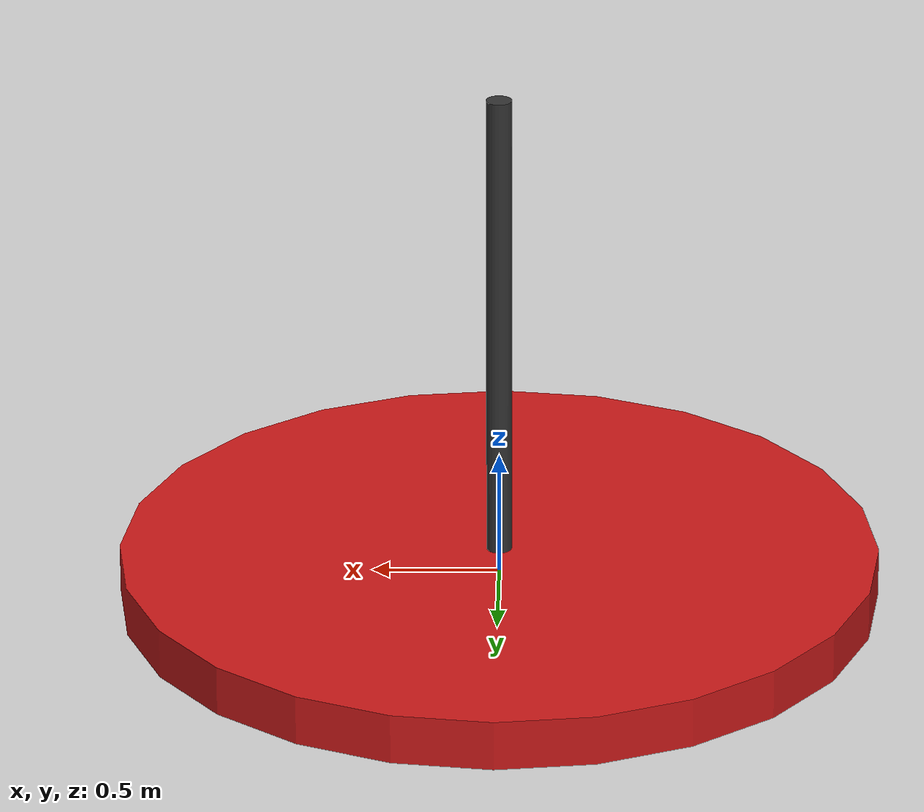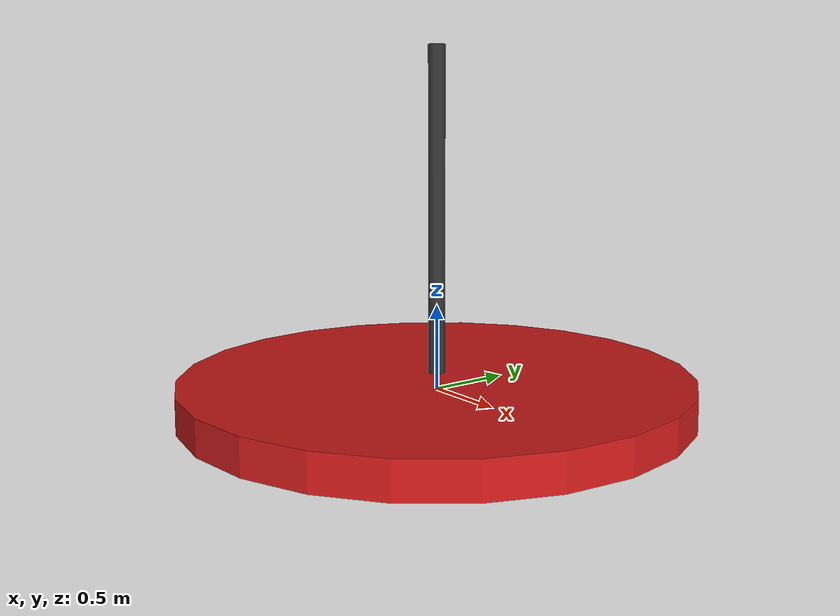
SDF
<?xml version="1.0" ?>
<sdf version="1.8">
  <model name="ground_station">
    <static>true</static>
    <link name="link">
      <collision name="collision">
        <geometry>
          <cylinder>
            <radius>1.5</radius>
            <length>0.2</length>
          </cylinder>
        </geometry>
      </collision>
      <visual name="visual">
        <geometry>
          <cylinder>
            <radius>1.5</radius>
            <length>0.2</length>
          </cylinder>
        </geometry>
        <material>
          <ambient>0.8 0.1 0.1 1</ambient>
          <diffuse>0.8 0.1 0.1 1</diffuse>
        </material>
      </visual>
      <visual name="antenna">
        <pose>0 0 1.0 0 0 0</pose>
        <geometry>
          <cylinder>
            <radius>0.05</radius>
            <length>2.0</length>
          </cylinder>
        </geometry>
        <material>
           <ambient>0.2 0.2 0.2 1</ambient>
        </material>
      </visual>
    </link>
  </model>
</sdf>
